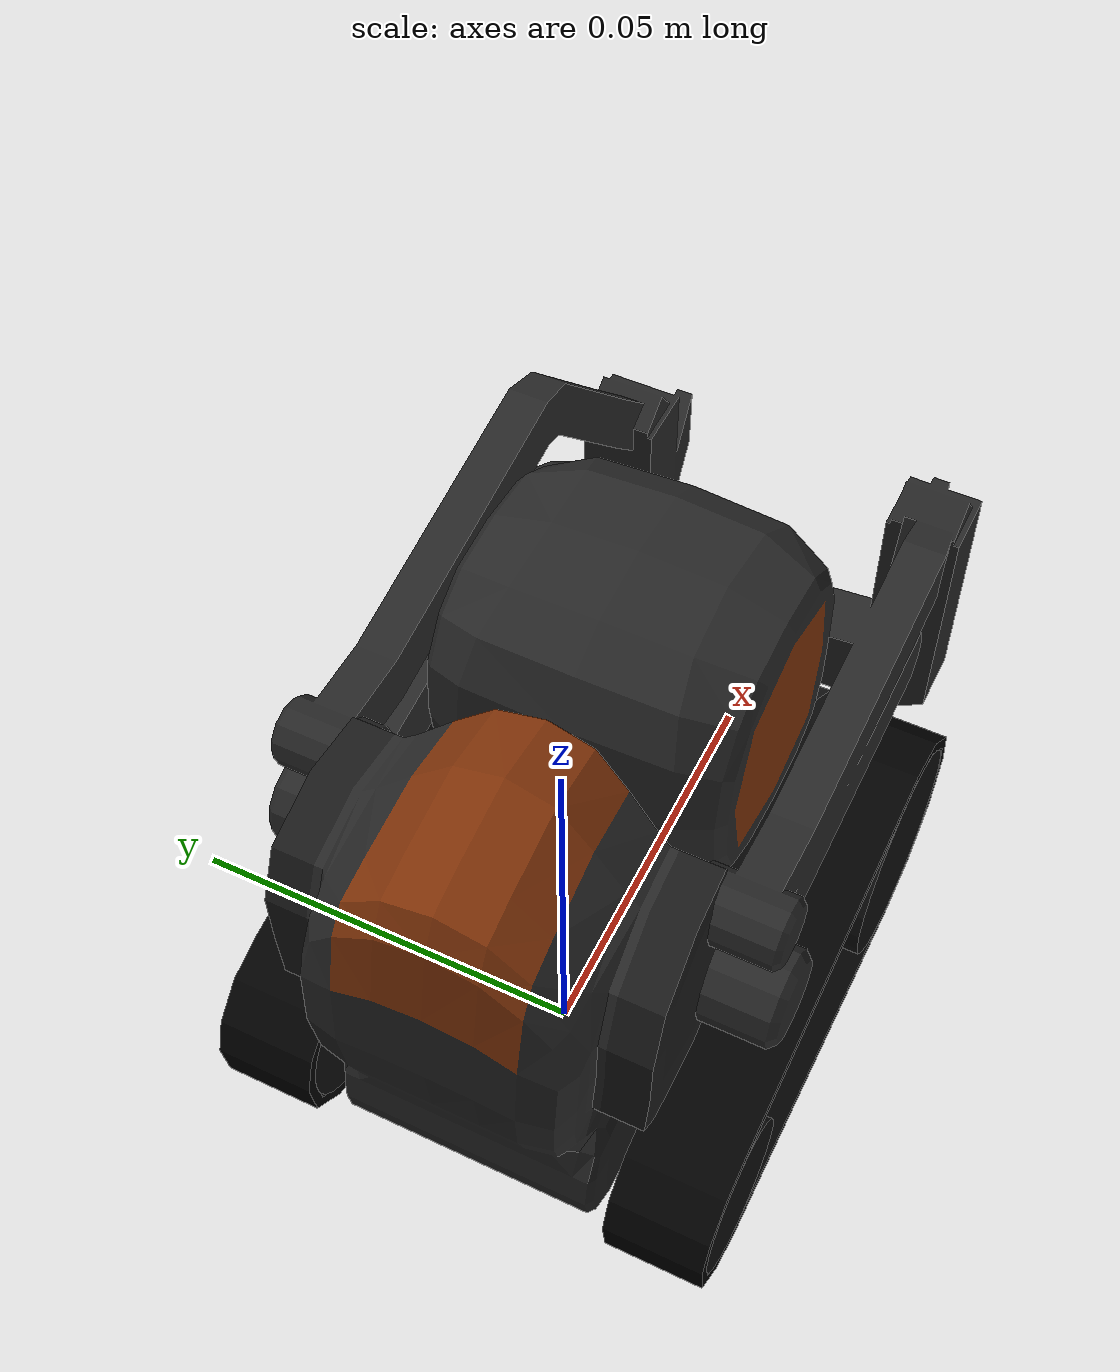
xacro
<?xml version="1.0"?>
<robot name="vector" xmlns:xacro="http://www.ros.org/wiki/xacro">

  <!-- Inertia util -->
  <xacro:include filename="$(find anki_description)/urdf/inertia.xacro"/>

  <link name="base_footprint"/>

  <joint name="base_footprint_joint" type="fixed">
    <origin rpy="0 0 0" xyz="0 0 0.027"/>
    <parent link="base_footprint"/>
    <child link="base_link"/>
  </joint>

  <!-- Body -->
  <link name="base_link">
    <visual>
      <geometry>
        <mesh filename="package://anki_description/meshes/vector_body.dae"  />
      </geometry>
    </visual>
    <collision>
      <origin rpy="0 0 0" xyz="0.0075 0.0 -0.01"/>
      <geometry>
        <box size="0.07 0.03 0.01"/>
      </geometry>
    </collision>
    <inertial>
      <origin rpy="0 0 0" xyz="0.0075 0.0 -0.01"/>
      <geometry>
        <box size="0.073 0.043 0.061"/>
      </geometry>
      <mass value="0.16"/>
      <xacro:box_inertia m="0.16" x="0.073" y="0.043" z="0.061" />
    </inertial>
  </link>
  <gazebo reference="base_link">
      <selfCollide>true</selfCollide>
      <mu1 value="200.0"/>
      <mu2 value="100.0"/>
      <kp value="10000000.0"/>
      <kd value="1.0"/>
  </gazebo>

  <!-- Head -->
  <link name="head">
    <visual>
      <geometry>
        <mesh filename="package://anki_description/meshes/vector_head.dae" />
      </geometry>
    </visual>
    <collision>
      <geometry>
        <sphere radius="0.02"/>
      </geometry>
    </collision>
    <inertial>
      <geometry>
        <sphere radius="0.02"/>
      </geometry>
      <mass value="0.03"/>
      <xacro:sphere_inertia m="0.03" r="0.02" />
    </inertial>
  </link>
  <gazebo reference="head">
    <mu1 value="200.0"/>
    <mu2 value="100.0"/>
    <kp value="10000000.0"/>
    <kd value="1.0"/>
  </gazebo>

  <!-- lifter -->
  <link name="full_lift">
    <visual>
      <geometry>
        <mesh filename="package://anki_description/meshes/vector_lift.dae"/>
      </geometry>
    </visual>
    <collision>
      <origin rpy="0 0 0" xyz="0.062 0.0 -0.015"/>
      <geometry>
        <box size="0.0075 0.05 0.025"/>
      </geometry>
    </collision>
    <inertial>
      <origin rpy="0 0 0" xyz="0.062 0.0 -0.015"/>
      <mass value="0.05"/>
      <xacro:box_inertia m="0.05" x="0.0075" y="0.05" z="0.025"/>
    </inertial>
  </link>
  <gazebo reference="full_lift">
    <mu1 value="200.0"/>
    <mu2 value="100.0"/>
    <kp value="10000000.0"/>
    <kd value="1.0"/>
  </gazebo>
  <!-- components -->
  <xacro:include filename="$(find anki_description)/urdf/joints.xacro"/>
  <xacro:include filename="$(find anki_description)/urdf/base.xacro"/>
  <xacro:include filename="$(find anki_description)/urdf/vector_cam.xacro"/>
  <xacro:include filename="$(find anki_description)/urdf/vector_drop.xacro"/>
  <xacro:include filename="$(find anki_description)/urdf/laser.xacro"/>
  <xacro:include filename="$(find anki_description)/urdf/imu.xacro"/>
  <xacro:imu ankirobot="vector"/>

</robot>

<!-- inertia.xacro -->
<robot xmlns:xacro="http://www.ros.org/wiki/xacro">

  <macro name="cylinder_inertia" params="m r h">
        <inertia    ixx="${m*(3*r*r+h*h)/12}" ixy = "0" ixz = "0"
                    iyy="${m*(3*r*r+h*h)/12}" iyz = "0"
                    izz="${m*r*r/2}" />
  </macro>

  <macro name="box_inertia" params="m x y z">
          <inertia  ixx="${m*(y*y+z*z)/12}" ixy = "0" ixz = "0"
                    iyy="${m*(x*x+z*z)/12}" iyz = "0"
                    izz="${m*(x*x+z*z)/12}" />
  </macro>

  <macro name="sphere_inertia" params="m r">
          <inertia  ixx="${2*m*r*r/5}" ixy = "0" ixz = "0"
                    iyy="${2*m*r*r/5}" iyz = "0"
                    izz="${2*m*r*r/5}" />
  </macro>

</robot>

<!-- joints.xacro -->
<robot xmlns:xacro="http://www.ros.org/wiki/xacro">

  <joint name="base_to_head" type="revolute">
    <parent link="base_link"/>
    <child link="head"/>
    <origin xyz="0.0174507 0 0.022003"/>
    <limit lower="-0.52" upper="0.17" effort="100" velocity="10"/>
    <!-- Damping breaks the model (?), keep it 0.0 -->
    <dynamics damping="0.0" friction="0.1"/>
    <axis xyz="0 1 0"/>
  </joint>

  <joint name="base_to_lift" type="revolute">
    <parent link="base_link"/>
    <child link="full_lift"/>
    <origin xyz="-0.005 0 0.013"/>
    <limit lower="-0.8" upper="0" effort="10" velocity="10"/>
    <dynamics damping="0.0" friction="0.1"/>
    <axis xyz="0 1 0"/>
  </joint>

  <!-- Transmissions for joints -->

  <transmission name="base_to_head_trans">
      <type>transmission_interface/SimpleTransmission</type>
      <joint name="base_to_head">
        <hardwareInterface>hardware_interface/PositionJointInterface</hardwareInterface>
      </joint>
      <actuator name="base_to_headMotor">
        <hardwareInterface>hardware_interface/PositionJointInterface</hardwareInterface>
        <mechanicalReduction>1</mechanicalReduction>
        <motorTorqueConstant>1</motorTorqueConstant>
      </actuator>
  </transmission>

  <transmission name="base_to_lift_trans">
      <type>transmission_interface/SimpleTransmission</type>
      <joint name="base_to_lift">
        <hardwareInterface>hardware_interface/PositionJointInterface</hardwareInterface>
      </joint>
      <actuator name="base_to_liftMotor">
        <hardwareInterface>hardware_interface/PositionJointInterface</hardwareInterface>
        <mechanicalReduction>1</mechanicalReduction>
        <motorTorqueConstant>1</motorTorqueConstant>
      </actuator>
  </transmission>

</robot>

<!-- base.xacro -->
<robot xmlns:xacro="http://www.ros.org/wiki/xacro">
  <material name="black">
    <color rgba="0.05 0.05 0.05 1.0"/>
  </material>

  <xacro:macro name="wheel" params="link_name *origin radius">
    <link name="${link_name}">
      <visual>
        <material name="black"/>
        <origin rpy="0 0 0" xyz="0 0 0"/>
        <geometry>
          <cylinder radius="${radius}" length="0.0116739"/>
        </geometry>
      </visual>
      <collision>
        <material name="black"/>
        <origin rpy="0 0 0" xyz="0 0 0"/>
        <geometry>
            <cylinder radius="${radius}" length="0.0116739"/>
        </geometry>
      </collision>
      <inertial>
        <origin rpy="0 0 0" xyz="0 0 0"/>
        <geometry>
          <cylinder radius="${radius}" length="0.0116739"/>
        </geometry>
        <mass value="0.01"/>
        <xacro:cylinder_inertia m="0.01" r="${radius}" h="0.01167"/>
      </inertial>
    </link>
    <gazebo reference="${link_name}">
      <material>Gazebo/Grey</material>
    </gazebo>
    <joint name="${link_name}_joint" type="continuous">
        <parent link="base_link"/>
        <child link="${link_name}"/>
        <xacro:insert_block name="origin"/>
        <axis xyz="0 0 1"/>
    </joint>
    <transmission name="${link_name}_transmission">
        <type>transmission_interface/SimpleTransmission</type>
        <joint name="${link_name}_joint">
            <hardwareInterface>hardware_interface/VelocityJointInterface</hardwareInterface>
        </joint>
        <actuator name="${link_name}_motor">
            <hardwareInterface>hardware_interface/VelocityJointInterface</hardwareInterface>
            <mechanicalReduction>30</mechanicalReduction>
        </actuator>
    </transmission>
    <gazebo reference="${link_name}">
      <selfCollide>True</selfCollide>
    </gazebo>
  </xacro:macro>

<xacro:wheel link_name="front_left_wheel" radius="0.01314">
  <origin xyz="0.03 0.024 -0.012" rpy="${-pi/2} 0 0"/>
</xacro:wheel>

<xacro:wheel link_name="front_right_wheel" radius="0.01314">
  <origin xyz="0.03 -0.024 -0.012" rpy="${-pi/2} 0 0"/>
</xacro:wheel>

<xacro:wheel link_name="rear_left_wheel" radius="0.008995">
  <origin xyz="-0.017 0.024 -0.0151707" rpy="${-pi/2} 0 0"/>
</xacro:wheel>

<xacro:wheel link_name="rear_right_wheel" radius="0.008995">
  <origin xyz="-0.017 -0.024 -0.0151707" rpy="${-pi/2} 0 0"/>
</xacro:wheel>

<link name="left_belt">
  <visual>
    <geometry>
      <mesh filename="package://anki_description/meshes/cozmo_belt.dae" />
    </geometry>
  </visual>
</link>
<joint name="wheel_left_belt" type="fixed">
  <parent link="base_link"/>
  <child link="left_belt"/>
  <origin xyz="0.00945088 0.024 -0.0133211"/>
</joint>

<link name="right_belt">
  <visual>
    <geometry>
      <mesh filename="package://anki_description/meshes/cozmo_belt.dae" />
    </geometry>
  </visual>
</link>
<joint name="wheel_right_belt" type="fixed">
  <parent link="base_link"/>
  <child link="right_belt"/>
  <origin xyz="0.00945088 -0.024 -0.0133211"/>
</joint>

<gazebo>
    <plugin name="skid_steer_drive_controller" filename="libgazebo_ros_skid_steer_drive.so">
        <updateRate>25.0</updateRate>
        <robotNamespace>/</robotNamespace>
        <leftFrontJoint>front_left_wheel_joint</leftFrontJoint>
        <rightFrontJoint>front_right_wheel_joint</rightFrontJoint>
        <leftRearJoint>rear_left_wheel_joint</leftRearJoint>
        <rightRearJoint>rear_right_wheel_joint</rightRearJoint>
        <wheelSeparation>0.048</wheelSeparation>
        <wheelDiameter>0.026281</wheelDiameter>
        <robotBaseFrame>base_footprint</robotBaseFrame>
        <torque>1.0</torque>
        <commandTopic>cmd_vel</commandTopic>
        <odometryTopic>odom</odometryTopic>
        <broadcastTF>true</broadcastTF>
        <odometryFrame>odom</odometryFrame>
        <covariance_x>0.0001</covariance_x>
        <covariance_y>0.0001</covariance_y>
        <covariance_yaw>0.001</covariance_yaw>
    </plugin>
</gazebo>

</robot>

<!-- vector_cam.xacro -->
<robot xmlns:xacro="http://www.ros.org/wiki/xacro">

  <link name="camera_link"/>
  <joint name="head_camera_joint" type="fixed">
    <parent link="head"/>
    <child link="camera_link"/>
    <origin xyz="0.020813 0 -0.0071471" rpy="0 0 0"/>
  </joint>

  <gazebo reference="camera_link">
    <sensor type="camera" name="vector_camera">
      <update_rate>10.0</update_rate>
      <camera name="headcamera">
        <horizontal_fov>1.3962634</horizontal_fov>
        <image>
          <width>1280</width>
          <height>720</height>
          <format>R8G8B8</format>
        </image>
        <clip>
          <near>0.01</near>
          <far>100</far>
        </clip>
        <noise>
          <type>gaussian</type>
          <mean>0.0</mean>
          <stddev>0.007</stddev>
        </noise>
      </camera>
      <plugin name="camera_controller" filename="libgazebo_ros_camera.so">
        <alwaysOn>true</alwaysOn>
        <updateRate>10.0</updateRate>
        <cameraName>camera</cameraName>
        <imageTopicName>/vector/camera</imageTopicName>
        <cameraInfoTopicName>/vector/camera_info</cameraInfoTopicName>
        <frameName>camera_link</frameName>
        <hackBaseline>0.07</hackBaseline>
        <distortionK1>0.0</distortionK1>
        <distortionK2>0.0</distortionK2>
        <distortionK3>0.0</distortionK3>
        <distortionT1>0.0</distortionT1>
        <distortionT2>0.0</distortionT2>
      </plugin>
    </sensor>
  </gazebo>
</robot>

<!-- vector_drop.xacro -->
<robot xmlns:xacro="http://www.ros.org/wiki/xacro">

  <xacro:macro name="drop_sensor" params="link_name *origin">
    <link name="${link_name}"/>
    <joint name="${link_name}_joint" type="fixed">
        <parent link="base_link"/>
        <child link="${link_name}"/>
        <xacro:insert_block name="origin"/>
    </joint>
    <gazebo reference="${link_name}">
     <sensor type="ray" name="ranger">
        <pose>0 0 0 0 0 0</pose>
        <visualize>true</visualize>
        <update_rate>50</update_rate>
        <ray>
           <scan>
              <horizontal>
                 <samples>10</samples>
                 <resolution>1</resolution>
                 <min_angle>-0.14835</min_angle>
                 <max_angle>0.14835</max_angle>
              </horizontal>
              <vertical>
                 <samples>10</samples>
                 <resolution>1</resolution>
                 <min_angle>-0.14835</min_angle>
                 <max_angle>0.14835</max_angle>
              </vertical>
           </scan>
           <range>
              <min>0.001</min>
              <max>0.02</max>
              <resolution>0.02</resolution>
           </range>
        </ray>
        <plugin filename="libgazebo_ros_range.so" name="gazebo_ros_range">
           <gaussianNoise>0.005</gaussianNoise>
           <alwaysOn>true</alwaysOn>
           <updateRate>50</updateRate>
           <topicName>/vector/${link_name}</topicName>
           <frameName>${link_name}</frameName>
           <radiation>INFRARED</radiation>
           <fov>0.2967</fov>
        </plugin>
     </sensor>
     </gazebo>
  </xacro:macro>

  <xacro:drop_sensor link_name="drop_fl">
    <origin xyz="0.0351028 0.01 -0.0213898" rpy="0 1.57 0" />
  </xacro:drop_sensor>

  <xacro:drop_sensor link_name="drop_fr">
    <origin xyz="0.0351028 -0.01 -0.0213898" rpy="0 1.57 0" />
  </xacro:drop_sensor>

  <xacro:drop_sensor link_name="drop_rl">
    <origin xyz="-0.02 0.01 -0.0213898" rpy="0 1.57 0" />
  </xacro:drop_sensor>

  <xacro:drop_sensor link_name="drop_rr">
    <origin xyz="-0.02 -0.01 -0.0213898" rpy="0 1.57 0" />
  </xacro:drop_sensor>

</robot>

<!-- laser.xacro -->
<robot xmlns:xacro="http://www.ros.org/wiki/xacro">

  <xacro:property name="field_of_view" value="0.02"/>

  <link name="tof_link"/>
  <joint name="tof_joint" type="fixed">
      <parent link="base_link"/>
      <child link="tof_link"/>
      <origin rpy="0 0 0" xyz="0.043 0 -0.005"/>
  </joint>

  <gazebo reference="tof_link">
      <sensor type="ray" name="tof_link">
          <pose>0 0 0 0 0 0</pose>
          <visualize>true</visualize>
          <update_rate>10.0</update_rate>
          <ray>
              <scan>
                  <horizontal>
                      <samples>4</samples>
                      <resolution>1</resolution>
                      <min_angle>${-field_of_view/2}</min_angle>
                      <max_angle>${field_of_view/2}</max_angle>
                  </horizontal>
                  <vertical>
                      <samples>4</samples>
                      <resolution>1</resolution>
                      <min_angle>${-field_of_view/2}</min_angle>
                      <max_angle>${field_of_view/2}</max_angle>
                  </vertical>
              </scan>
              <range>
                  <min>0.0</min>
                  <max>0.4</max>
                  <resolution>0.01</resolution>
              </range>
              <noise>
                <type>gaussian</type>
                <mean>0.01</mean>
                <stddev>0.01</stddev>
              </noise>
          </ray>
          <plugin filename="libgazebo_ros_range.so" name="gazebo_ros_range">
              <gaussianNoise>0.01</gaussianNoise>
              <topicName>/vector/laser</topicName>
              <frameName>tof_link</frameName>
              <radiation>INFRARED</radiation>
              <updateRate>10</updateRate>
              <fov>${field_of_view}</fov>
          </plugin>
      </sensor>
  </gazebo>

</robot>

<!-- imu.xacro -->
<robot xmlns:xacro="http://www.ros.org/wiki/xacro">

<xacro:macro name="imu" params="ankirobot">
  <link name="imu"/>

  <joint name="imu_joint" type="fixed">
    <parent link="head"/>
    <child link="imu"/>
    <origin xyz="0.0 0 0.0" rpy="0 0 0" />
  </joint>

  <gazebo reference="imu">
    <gravity>true</gravity>
    <sensor name="imu_sensor" type="imu">
      <always_on>true</always_on>
      <update_rate>100</update_rate>
      <visualize>true</visualize>
      <topic>${ankirobot}/imu</topic>
      <plugin filename="libgazebo_ros_imu_sensor.so" name="imu_plugin">
        <topicName>${ankirobot}/imu</topicName>
        <bodyName>imu</bodyName>
        <updateRateHZ>10.0</updateRateHZ>
        <gaussianNoise>${0.0017*0.0017}</gaussianNoise>
        <xyzOffset>0 0 0</xyzOffset>
        <rpyOffset>0 0 0</rpyOffset>
        <frameName>imu</frameName>
      </plugin>
      <pose>0 0 0 0 0 0</pose>
    </sensor>
  </gazebo>
</xacro:macro>

</robot>
